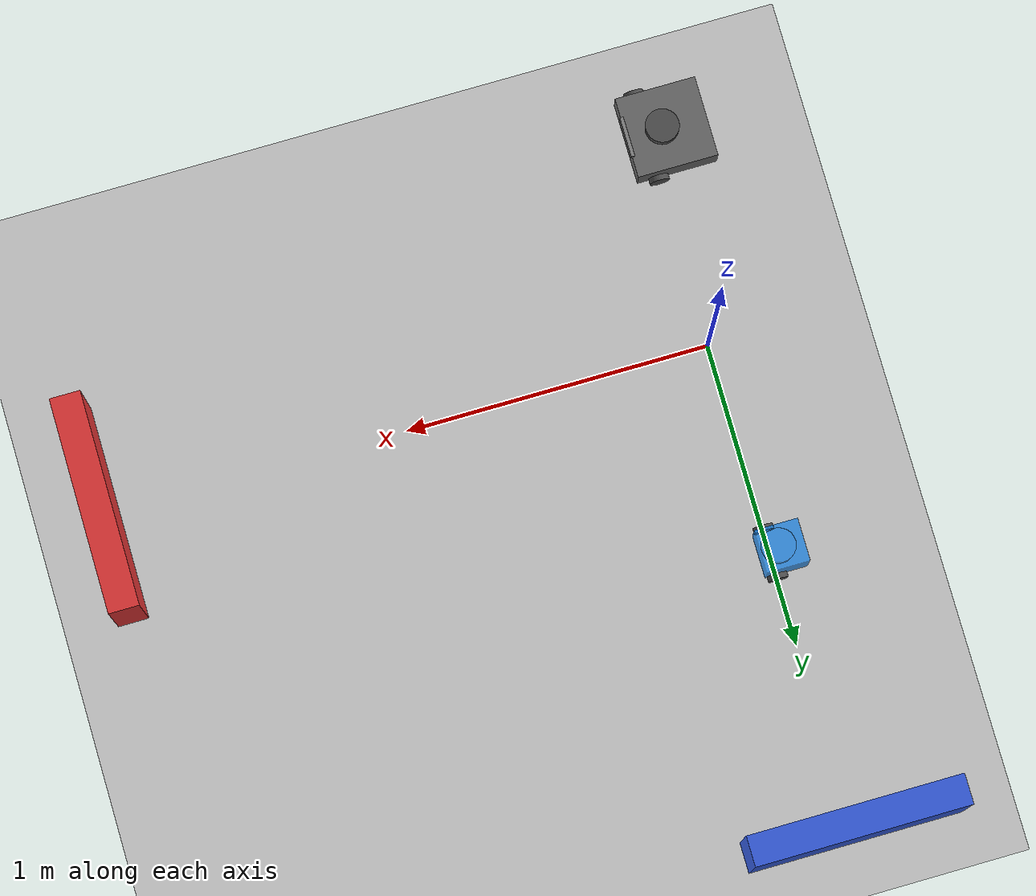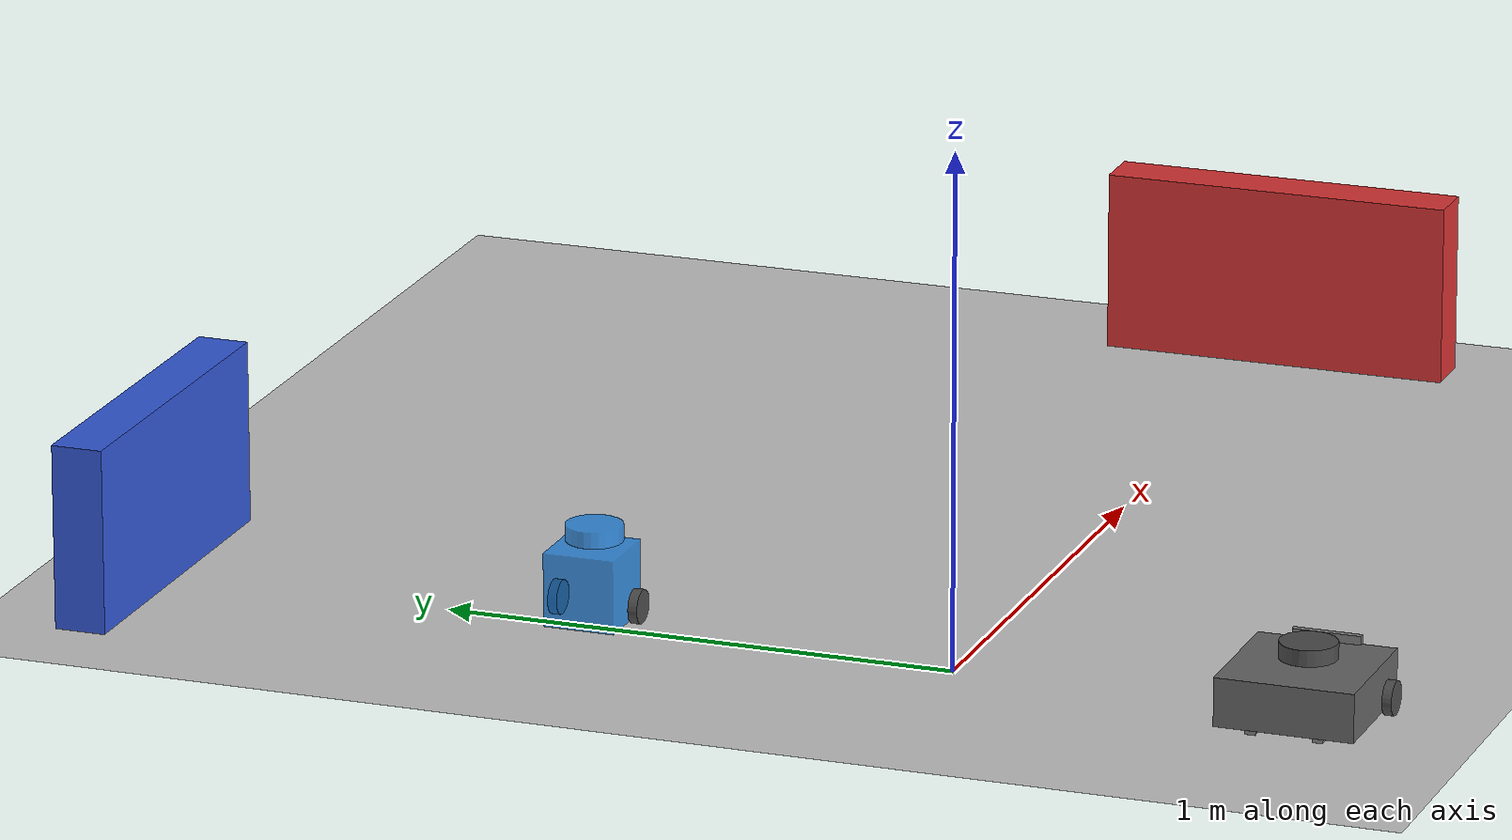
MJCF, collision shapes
<?xml version='1.0' encoding='utf-8'?>
<mujoco model="tb3_waffle_real_burger_mirror">
  <compiler angle="radian" />
  <option timestep="0.001" gravity="0 0 -9.81" integrator="implicit" />
  <visual>
    <global offwidth="320" offheight="240" />
    <map znear="0.05" zfar="10" />
  </visual>
  <asset>
    <texture name="minimal_grid" type="2d" builtin="checker" width="256" height="256" rgb1="0.92 0.92 0.92" rgb2="0.62 0.62 0.62" />
    <material name="minimal_grid" texture="minimal_grid" texrepeat="4 4" texuniform="true" reflectance="0.1" />
    <mesh name="burger_mirror_base_mesh" content_type="model/stl" file="../../../hakoniwa-mbody-registry/bodies/turtlebot3_burger/source/turtlebot3_description/meshes/bases/burger_base.stl" scale="0.001 0.001 0.001" />
    <mesh name="burger_mirror_left_tire_mesh" content_type="model/stl" file="../../../hakoniwa-mbody-registry/bodies/turtlebot3_burger/source/turtlebot3_description/meshes/wheels/left_tire.stl" scale="0.001 0.001 0.001" />
    <mesh name="burger_mirror_right_tire_mesh" content_type="model/stl" file="../../../hakoniwa-mbody-registry/bodies/turtlebot3_burger/source/turtlebot3_description/meshes/wheels/right_tire.stl" scale="0.001 0.001 0.001" />
    <mesh name="burger_mirror_lds_mesh" content_type="model/stl" file="../../../hakoniwa-mbody-registry/bodies/turtlebot3_burger/source/turtlebot3_description/meshes/sensors/lds.stl" scale="0.001 0.001 0.001" />
    <material name="burger_mirror" rgba="0.12 0.55 0.95 0.8" />
    <material name="mirror_heading" rgba="0.95 0.95 0.95 0.85" />
  </asset>
  <worldbody>
    <geom name="ground" type="plane" size="6 6 0.05" material="minimal_grid" friction="1.0" />
    <geom name="front_marker" type="box" pos="2.0 0 0.18" size="0.05 0.35 0.18" rgba="0.85 0.2 0.2 1" contype="0" conaffinity="0" />
    <geom name="side_marker" type="box" pos="0 1.6 0.18" size="0.35 0.05 0.18" rgba="0.2 0.35 0.85 1" contype="0" conaffinity="0" />
    <light name="top_light" pos="0 0 3" dir="0 0 -1" diffuse="0.8 0.8 0.8" />
    <camera name="overview" pos="1.6 -2.1 1.3" xyaxes="0.8 0.6 0 -0.35 0.47 0.81" />

    <body name="base_footprint" pos="0 -0.7 0.02">
      <freejoint />
      <body name="base_link" pos="0 0 0.01">
        <inertial pos="0 0 0" quat="0.602478 0.382697 -0.591491 0.375103" mass="1.37291" diaginertia="0.0146148 0.00872051 0.00859719" />
        <geom size="0.133 0.133 0.047" pos="-0.064 0 0.047" type="box" rgba="0.4 0.4 0.4 1" />
        <body name="wheel_left_link" pos="0 0.144 0.023" quat="0.707388 -0.706825 0 0">
          <inertial pos="0 0 0" quat="-0.000890159 0.706886 0.000889646 0.707326" mass="0.0284989" diaginertia="2.07126e-05 1.11924e-05 1.11756e-05" />
          <joint name="wheel_left_joint" pos="0 0 0" axis="0 0 1" />
          <geom size="0.033 0.009" type="cylinder" rgba="0.3 0.3 0.3 1" />
        </body>
        <body name="wheel_right_link" pos="0 -0.144 0.023" quat="0.707388 -0.706825 0 0">
          <inertial pos="0 0 0" quat="-0.000890159 0.706886 0.000889646 0.707326" mass="0.0284989" diaginertia="2.07126e-05 1.11924e-05 1.11756e-05" />
          <joint name="wheel_right_joint" pos="0 0 0" axis="0 0 1" />
          <geom size="0.033 0.009" type="cylinder" rgba="0.3 0.3 0.3 1" />
        </body>
        <body name="caster_back_right_link" pos="-0.177 -0.064 -0.004" quat="0.707388 -0.706825 0 0">
          <inertial pos="0 0 0" mass="0.005" diaginertia="0.001 0.001 0.001" />
          <geom size="0.015 0.0045 0.01" pos="0 0.001 0" type="box" />
        </body>
        <body name="caster_back_left_link" pos="-0.177 0.064 -0.004" quat="0.707388 -0.706825 0 0">
          <inertial pos="0 0 0" mass="0.005" diaginertia="0.001 0.001 0.001" />
          <geom size="0.015 0.0045 0.01" pos="0 0.001 0" type="box" />
        </body>
        <body name="imu_link" pos="0 0 0.068" />
        <body name="base_scan" pos="-0.064 0 0.122">
          <inertial pos="0 0 0" mass="0.114" diaginertia="0.001 0.001 0.001" />
          <geom size="0.055 0.01575" pos="0.015 0 -0.0065" type="cylinder" rgba="0.3 0.3 0.3 1" />
        </body>
        <body name="camera_link" pos="0.064 -0.065 0.094">
          <geom size="0.006 0.066 0.01" pos="0.003 0.065 0.007" type="box" />
          <body name="camera_rgb_frame" pos="0.005 0.018 0.013">
            <body name="camera_rgb_optical_frame" quat="0.500398 -0.5 0.499602 -0.5" />
          </body>
          <body name="camera_depth_frame" pos="0.005 0.028 0.013">
            <body name="camera_depth_optical_frame" quat="0.500398 -0.5 0.499602 -0.5" />
          </body>
        </body>
      </body>
    </body>

    <body name="burger_mirror_base_link" pos="0 0.7 0.03">
      <freejoint />
      <geom name="burger_mirror_base_mesh" pos="-0.032 0 0" type="mesh" mesh="burger_mirror_base_mesh" material="burger_mirror" contype="0" conaffinity="0" group="1" density="0" />
      <geom name="burger_mirror_base_collision_visual" size="0.07 0.07 0.0715" pos="-0.032 0 0.07" type="box" material="burger_mirror" contype="0" conaffinity="0" />
      <body name="burger_mirror_wheel_left_link" pos="0 0.08 0.023" quat="0.707388 -0.706825 0 0">
        <geom name="burger_mirror_left_tire_mesh" quat="0.707388 0.706825 0 0" type="mesh" mesh="burger_mirror_left_tire_mesh" rgba="0.3 0.3 0.3 0.9" contype="0" conaffinity="0" group="1" density="0" />
        <geom name="burger_mirror_left_tire" size="0.033 0.009" type="cylinder" rgba="0.3 0.3 0.3 0.9" contype="0" conaffinity="0" />
      </body>
      <body name="burger_mirror_wheel_right_link" pos="0 -0.08 0.023" quat="0.707388 -0.706825 0 0">
        <geom name="burger_mirror_right_tire_mesh" quat="0.707388 0.706825 0 0" type="mesh" mesh="burger_mirror_right_tire_mesh" rgba="0.3 0.3 0.3 0.9" contype="0" conaffinity="0" group="1" density="0" />
        <geom name="burger_mirror_right_tire" size="0.033 0.009" type="cylinder" rgba="0.3 0.3 0.3 0.9" contype="0" conaffinity="0" />
      </body>
      <body name="burger_mirror_base_scan" pos="-0.032 0 0.172">
        <geom name="burger_mirror_lds_mesh" type="mesh" mesh="burger_mirror_lds_mesh" material="burger_mirror" contype="0" conaffinity="0" group="1" density="0" />
        <geom name="burger_mirror_lds" size="0.055 0.01575" pos="0.015 0 -0.0065" type="cylinder" material="burger_mirror" contype="0" conaffinity="0" />
      </body>
    </body>
  </worldbody>
  <actuator>
    <velocity name="left_motor" joint="wheel_left_joint" ctrllimited="true" ctrlrange="-12 12" kv="0.75" />
    <velocity name="right_motor" joint="wheel_right_joint" ctrllimited="true" ctrlrange="-12 12" kv="0.75" />
  </actuator>
</mujoco>
